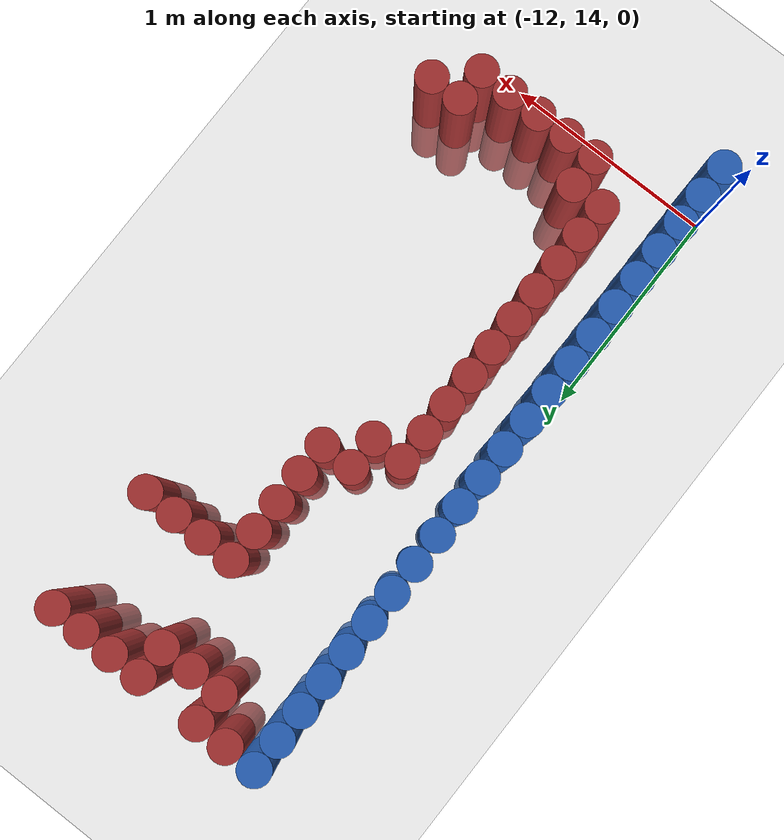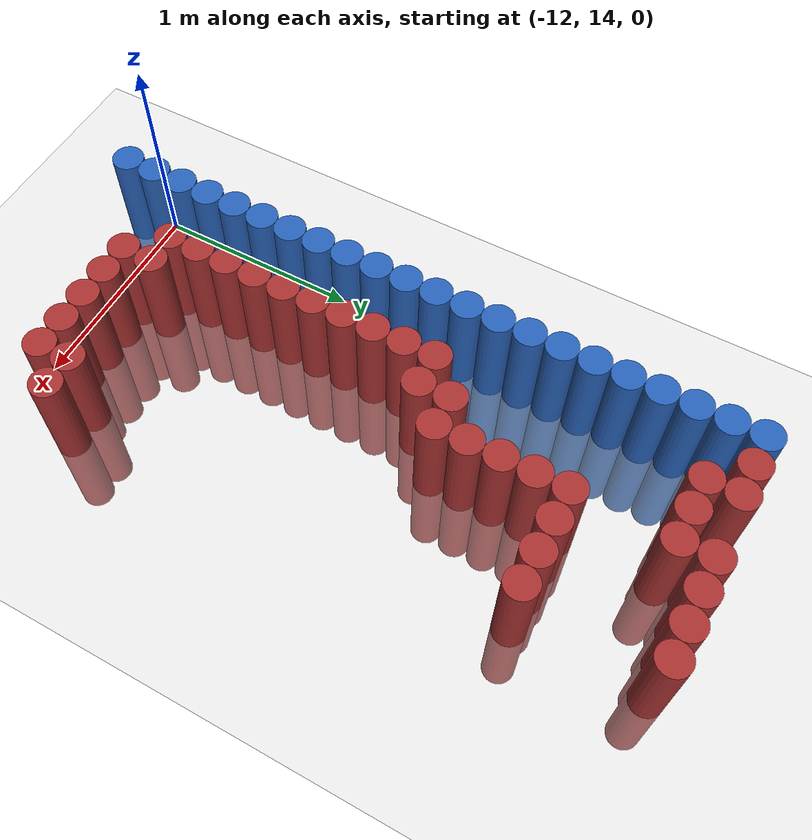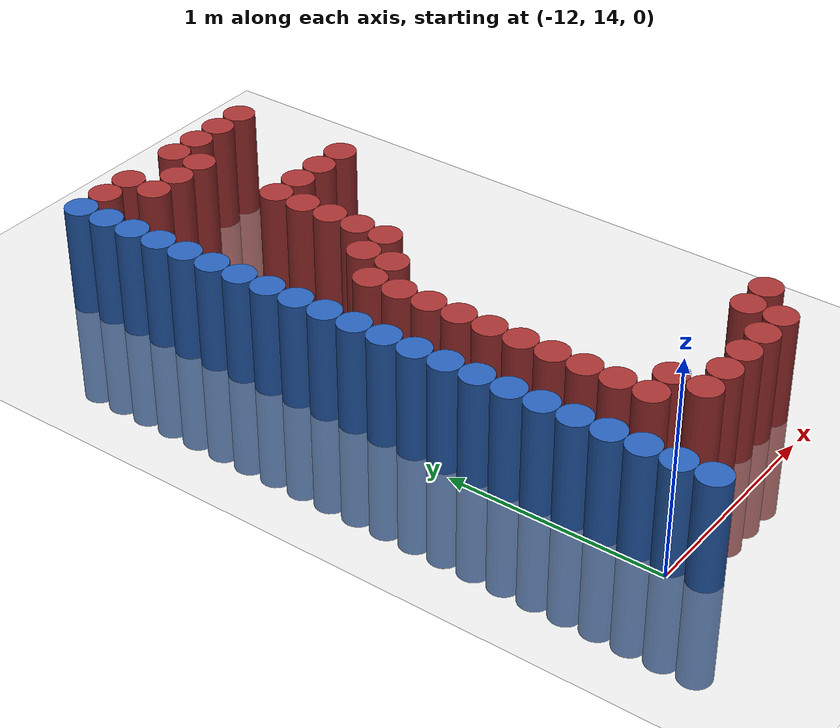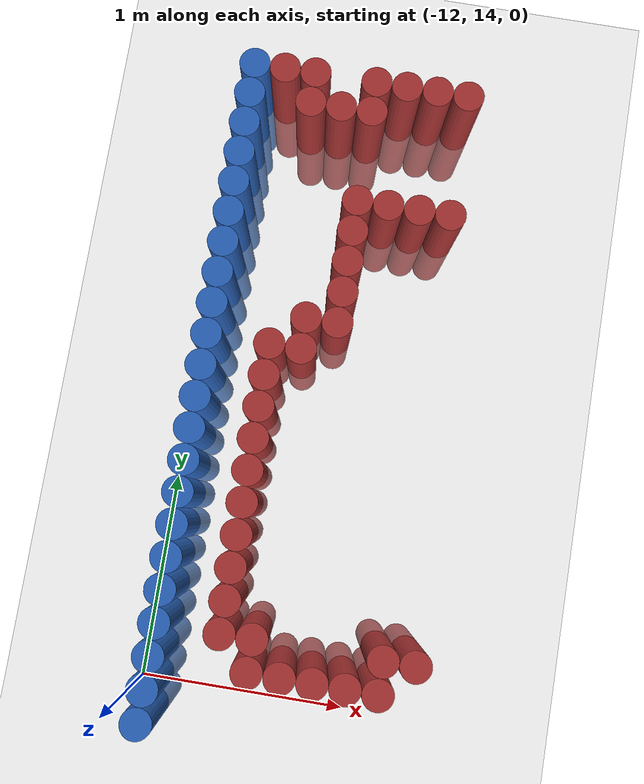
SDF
<sdf version="1.6">
 <world name="default">
  <model name="ground_plane">
   <static>1</static>
   <link name="link">
    <collision name="collision">
     <geometry><plane><normal>0 0 1</normal><size>100 100</size></plane></geometry>
     <surface><friction><ode><mu>100</mu><mu2>50</mu2></ode></friction></surface>
    </collision>
    <visual name="visual">
     <cast_shadows>0</cast_shadows>
     <geometry><plane><normal>0 0 1</normal><size>100 100</size></plane></geometry>
     <material>
      <script><uri>file://media/materials/scripts/gazebo.material</uri><name>Gazebo/Grey</name></script>
     </material>
    </visual>
   </link>
  </model>
  <model name="unit_cylinder_203">
   <static>1</static>
   <pose>-11.925 13.875 0 0 -0 0</pose>
   <link name="link">
    <inertial>
     <mass>1</mass>
     <inertia><ixx>0.145833</ixx><ixy>0</ixy><ixz>0</ixz><iyy>0.145833</iyy><iyz>0</iyz><izz>0.125</izz></inertia>
    </inertial>
    <collision name="collision">
     <geometry><cylinder><radius>0.075</radius><length>1</length></cylinder></geometry>
    </collision>
    <visual name="visual">
     <geometry><cylinder><radius>0.075</radius><length>1</length></cylinder></geometry>
     <material><ambient>0.152 0.379 0.72 1</ambient><diffuse>0.152 0.379 0.72 1</diffuse></material>
     <material>
      <script><name>Gazebo/Grey</name><uri>file://media/materials/scripts/gazebo.material</uri></script>
     </material>
    </visual>
   </link>
  </model>
  <model name="unit_cylinder_204">
   <static>1</static>
   <pose>-11.925 14.025 0 0 -0 0</pose>
   <link name="link">
    <inertial>
     <mass>1</mass>
     <inertia><ixx>0.145833</ixx><ixy>0</ixy><ixz>0</ixz><iyy>0.145833</iyy><iyz>0</iyz><izz>0.125</izz></inertia>
    </inertial>
    <collision name="collision">
     <geometry><cylinder><radius>0.075</radius><length>1</length></cylinder></geometry>
    </collision>
    <visual name="visual">
     <geometry><cylinder><radius>0.075</radius><length>1</length></cylinder></geometry>
     <material><ambient>0.152 0.379 0.72 1</ambient><diffuse>0.152 0.379 0.72 1</diffuse></material>
     <material>
      <script><name>Gazebo/Grey</name><uri>file://media/materials/scripts/gazebo.material</uri></script>
     </material>
    </visual>
   </link>
  </model>
  <model name="unit_cylinder_205">
   <static>1</static>
   <pose>-11.925 14.175 0 0 -0 0</pose>
   <link name="link">
    <inertial>
     <mass>1</mass>
     <inertia><ixx>0.145833</ixx><ixy>0</ixy><ixz>0</ixz><iyy>0.145833</iyy><iyz>0</iyz><izz>0.125</izz></inertia>
    </inertial>
    <collision name="collision">
     <geometry><cylinder><radius>0.075</radius><length>1</length></cylinder></geometry>
    </collision>
    <visual name="visual">
     <geometry><cylinder><radius>0.075</radius><length>1</length></cylinder></geometry>
     <material><ambient>0.152 0.379 0.72 1</ambient><diffuse>0.152 0.379 0.72 1</diffuse></material>
     <material>
      <script><name>Gazebo/Grey</name><uri>file://media/materials/scripts/gazebo.material</uri></script>
     </material>
    </visual>
   </link>
  </model>
  <model name="unit_cylinder_206">
   <static>1</static>
   <pose>-11.925 14.325 0 0 -0 0</pose>
   <link name="link">
    <inertial>
     <mass>1</mass>
     <inertia><ixx>0.145833</ixx><ixy>0</ixy><ixz>0</ixz><iyy>0.145833</iyy><iyz>0</iyz><izz>0.125</izz></inertia>
    </inertial>
    <collision name="collision">
     <geometry><cylinder><radius>0.075</radius><length>1</length></cylinder></geometry>
    </collision>
    <visual name="visual">
     <geometry><cylinder><radius>0.075</radius><length>1</length></cylinder></geometry>
     <material><ambient>0.152 0.379 0.72 1</ambient><diffuse>0.152 0.379 0.72 1</diffuse></material>
     <material>
      <script><name>Gazebo/Grey</name><uri>file://media/materials/scripts/gazebo.material</uri></script>
     </material>
    </visual>
   </link>
  </model>
  <model name="unit_cylinder_207">
   <static>1</static>
   <pose>-11.925 14.475 0 0 -0 0</pose>
   <link name="link">
    <inertial>
     <mass>1</mass>
     <inertia><ixx>0.145833</ixx><ixy>0</ixy><ixz>0</ixz><iyy>0.145833</iyy><iyz>0</iyz><izz>0.125</izz></inertia>
    </inertial>
    <collision name="collision">
     <geometry><cylinder><radius>0.075</radius><length>1</length></cylinder></geometry>
    </collision>
    <visual name="visual">
     <geometry><cylinder><radius>0.075</radius><length>1</length></cylinder></geometry>
     <material><ambient>0.152 0.379 0.72 1</ambient><diffuse>0.152 0.379 0.72 1</diffuse></material>
     <material>
      <script><name>Gazebo/Grey</name><uri>file://media/materials/scripts/gazebo.material</uri></script>
     </material>
    </visual>
   </link>
  </model>
  <model name="unit_cylinder_208">
   <static>1</static>
   <pose>-11.925 14.625 0 0 -0 0</pose>
   <link name="link">
    <inertial>
     <mass>1</mass>
     <inertia><ixx>0.145833</ixx><ixy>0</ixy><ixz>0</ixz><iyy>0.145833</iyy><iyz>0</iyz><izz>0.125</izz></inertia>
    </inertial>
    <collision name="collision">
     <geometry><cylinder><radius>0.075</radius><length>1</length></cylinder></geometry>
    </collision>
    <visual name="visual">
     <geometry><cylinder><radius>0.075</radius><length>1</length></cylinder></geometry>
     <material><ambient>0.152 0.379 0.72 1</ambient><diffuse>0.152 0.379 0.72 1</diffuse></material>
     <material>
      <script><name>Gazebo/Grey</name><uri>file://media/materials/scripts/gazebo.material</uri></script>
     </material>
    </visual>
   </link>
  </model>
  <model name="unit_cylinder_209">
   <static>1</static>
   <pose>-11.925 14.775 0 0 -0 0</pose>
   <link name="link">
    <inertial>
     <mass>1</mass>
     <inertia><ixx>0.145833</ixx><ixy>0</ixy><ixz>0</ixz><iyy>0.145833</iyy><iyz>0</iyz><izz>0.125</izz></inertia>
    </inertial>
    <collision name="collision">
     <geometry><cylinder><radius>0.075</radius><length>1</length></cylinder></geometry>
    </collision>
    <visual name="visual">
     <geometry><cylinder><radius>0.075</radius><length>1</length></cylinder></geometry>
     <material><ambient>0.152 0.379 0.72 1</ambient><diffuse>0.152 0.379 0.72 1</diffuse></material>
     <material>
      <script><name>Gazebo/Grey</name><uri>file://media/materials/scripts/gazebo.material</uri></script>
     </material>
    </visual>
   </link>
  </model>
  <model name="unit_cylinder_210">
   <static>1</static>
   <pose>-11.925 14.925 0 0 -0 0</pose>
   <link name="link">
    <inertial>
     <mass>1</mass>
     <inertia><ixx>0.145833</ixx><ixy>0</ixy><ixz>0</ixz><iyy>0.145833</iyy><iyz>0</iyz><izz>0.125</izz></inertia>
    </inertial>
    <collision name="collision">
     <geometry><cylinder><radius>0.075</radius><length>1</length></cylinder></geometry>
    </collision>
    <visual name="visual">
     <geometry><cylinder><radius>0.075</radius><length>1</length></cylinder></geometry>
     <material><ambient>0.152 0.379 0.72 1</ambient><diffuse>0.152 0.379 0.72 1</diffuse></material>
     <material>
      <script><name>Gazebo/Grey</name><uri>file://media/materials/scripts/gazebo.material</uri></script>
     </material>
    </visual>
   </link>
  </model>
  <model name="unit_cylinder_211">
   <static>1</static>
   <pose>-11.925 15.075 0 0 -0 0</pose>
   <link name="link">
    <inertial>
     <mass>1</mass>
     <inertia><ixx>0.145833</ixx><ixy>0</ixy><ixz>0</ixz><iyy>0.145833</iyy><iyz>0</iyz><izz>0.125</izz></inertia>
    </inertial>
    <collision name="collision">
     <geometry><cylinder><radius>0.075</radius><length>1</length></cylinder></geometry>
    </collision>
    <visual name="visual">
     <geometry><cylinder><radius>0.075</radius><length>1</length></cylinder></geometry>
     <material><ambient>0.152 0.379 0.72 1</ambient><diffuse>0.152 0.379 0.72 1</diffuse></material>
     <material>
      <script><name>Gazebo/Grey</name><uri>file://media/materials/scripts/gazebo.material</uri></script>
     </material>
    </visual>
   </link>
  </model>
  <model name="unit_cylinder_212">
   <static>1</static>
   <pose>-11.925 15.225 0 0 -0 0</pose>
   <link name="link">
    <inertial>
     <mass>1</mass>
     <inertia><ixx>0.145833</ixx><ixy>0</ixy><ixz>0</ixz><iyy>0.145833</iyy><iyz>0</iyz><izz>0.125</izz></inertia>
    </inertial>
    <collision name="collision">
     <geometry><cylinder><radius>0.075</radius><length>1</length></cylinder></geometry>
    </collision>
    <visual name="visual">
     <geometry><cylinder><radius>0.075</radius><length>1</length></cylinder></geometry>
     <material><ambient>0.152 0.379 0.72 1</ambient><diffuse>0.152 0.379 0.72 1</diffuse></material>
     <material>
      <script><name>Gazebo/Grey</name><uri>file://media/materials/scripts/gazebo.material</uri></script>
     </material>
    </visual>
   </link>
  </model>
  <model name="unit_cylinder_213">
   <static>1</static>
   <pose>-11.925 15.375 0 0 -0 0</pose>
   <link name="link">
    <inertial>
     <mass>1</mass>
     <inertia><ixx>0.145833</ixx><ixy>0</ixy><ixz>0</ixz><iyy>0.145833</iyy><iyz>0</iyz><izz>0.125</izz></inertia>
    </inertial>
    <collision name="collision">
     <geometry><cylinder><radius>0.075</radius><length>1</length></cylinder></geometry>
    </collision>
    <visual name="visual">
     <geometry><cylinder><radius>0.075</radius><length>1</length></cylinder></geometry>
     <material><ambient>0.152 0.379 0.72 1</ambient><diffuse>0.152 0.379 0.72 1</diffuse></material>
     <material>
      <script><name>Gazebo/Grey</name><uri>file://media/materials/scripts/gazebo.material</uri></script>
     </material>
    </visual>
   </link>
  </model>
  <model name="unit_cylinder_214">
   <static>1</static>
   <pose>-11.925 15.525 0 0 -0 0</pose>
   <link name="link">
    <inertial>
     <mass>1</mass>
     <inertia><ixx>0.145833</ixx><ixy>0</ixy><ixz>0</ixz><iyy>0.145833</iyy><iyz>0</iyz><izz>0.125</izz></inertia>
    </inertial>
    <collision name="collision">
     <geometry><cylinder><radius>0.075</radius><length>1</length></cylinder></geometry>
    </collision>
    <visual name="visual">
     <geometry><cylinder><radius>0.075</radius><length>1</length></cylinder></geometry>
     <material><ambient>0.152 0.379 0.72 1</ambient><diffuse>0.152 0.379 0.72 1</diffuse></material>
     <material>
      <script><name>Gazebo/Grey</name><uri>file://media/materials/scripts/gazebo.material</uri></script>
     </material>
    </visual>
   </link>
  </model>
  <model name="unit_cylinder_215">
   <static>1</static>
   <pose>-11.925 15.675 0 0 -0 0</pose>
   <link name="link">
    <inertial>
     <mass>1</mass>
     <inertia><ixx>0.145833</ixx><ixy>0</ixy><ixz>0</ixz><iyy>0.145833</iyy><iyz>0</iyz><izz>0.125</izz></inertia>
    </inertial>
    <collision name="collision">
     <geometry><cylinder><radius>0.075</radius><length>1</length></cylinder></geometry>
    </collision>
    <visual name="visual">
     <geometry><cylinder><radius>0.075</radius><length>1</length></cylinder></geometry>
     <material><ambient>0.152 0.379 0.72 1</ambient><diffuse>0.152 0.379 0.72 1</diffuse></material>
     <material>
      <script><name>Gazebo/Grey</name><uri>file://media/materials/scripts/gazebo.material</uri></script>
     </material>
    </visual>
   </link>
  </model>
  <model name="unit_cylinder_216">
   <static>1</static>
   <pose>-11.925 15.825 0 0 -0 0</pose>
   <link name="link">
    <inertial>
     <mass>1</mass>
     <inertia><ixx>0.145833</ixx><ixy>0</ixy><ixz>0</ixz><iyy>0.145833</iyy><iyz>0</iyz><izz>0.125</izz></inertia>
    </inertial>
    <collision name="collision">
     <geometry><cylinder><radius>0.075</radius><length>1</length></cylinder></geometry>
    </collision>
    <visual name="visual">
     <geometry><cylinder><radius>0.075</radius><length>1</length></cylinder></geometry>
     <material><ambient>0.152 0.379 0.72 1</ambient><diffuse>0.152 0.379 0.72 1</diffuse></material>
     <material>
      <script><name>Gazebo/Grey</name><uri>file://media/materials/scripts/gazebo.material</uri></script>
     </material>
    </visual>
   </link>
  </model>
  <model name="unit_cylinder_217">
   <static>1</static>
   <pose>-11.925 15.975 0 0 -0 0</pose>
   <link name="link">
    <inertial>
     <mass>1</mass>
     <inertia><ixx>0.145833</ixx><ixy>0</ixy><ixz>0</ixz><iyy>0.145833</iyy><iyz>0</iyz><izz>0.125</izz></inertia>
    </inertial>
    <collision name="collision">
     <geometry><cylinder><radius>0.075</radius><length>1</length></cylinder></geometry>
    </collision>
    <visual name="visual">
     <geometry><cylinder><radius>0.075</radius><length>1</length></cylinder></geometry>
     <material><ambient>0.152 0.379 0.72 1</ambient><diffuse>0.152 0.379 0.72 1</diffuse></material>
     <material>
      <script><name>Gazebo/Grey</name><uri>file://media/materials/scripts/gazebo.material</uri></script>
     </material>
    </visual>
   </link>
  </model>
  <model name="unit_cylinder_218">
   <static>1</static>
   <pose>-11.925 16.125 0 0 -0 0</pose>
   <link name="link">
    <inertial>
     <mass>1</mass>
     <inertia><ixx>0.145833</ixx><ixy>0</ixy><ixz>0</ixz><iyy>0.145833</iyy><iyz>0</iyz><izz>0.125</izz></inertia>
    </inertial>
    <collision name="collision">
     <geometry><cylinder><radius>0.075</radius><length>1</length></cylinder></geometry>
    </collision>
    <visual name="visual">
     <geometry><cylinder><radius>0.075</radius><length>1</length></cylinder></geometry>
     <material><ambient>0.152 0.379 0.72 1</ambient><diffuse>0.152 0.379 0.72 1</diffuse></material>
     <material>
      <script><name>Gazebo/Grey</name><uri>file://media/materials/scripts/gazebo.material</uri></script>
     </material>
    </visual>
   </link>
  </model>
  <model name="unit_cylinder_219">
   <static>1</static>
   <pose>-11.925 16.275 0 0 -0 0</pose>
   <link name="link">
    <inertial>
     <mass>1</mass>
     <inertia><ixx>0.145833</ixx><ixy>0</ixy><ixz>0</ixz><iyy>0.145833</iyy><iyz>0</iyz><izz>0.125</izz></inertia>
    </inertial>
    <collision name="collision">
     <geometry><cylinder><radius>0.075</radius><length>1</length></cylinder></geometry>
    </collision>
    <visual name="visual">
     <geometry><cylinder><radius>0.075</radius><length>1</length></cylinder></geometry>
     <material><ambient>0.152 0.379 0.72 1</ambient><diffuse>0.152 0.379 0.72 1</diffuse></material>
     <material>
      <script><name>Gazebo/Grey</name><uri>file://media/materials/scripts/gazebo.material</uri></script>
     </material>
    </visual>
   </link>
  </model>
  <model name="unit_cylinder_220">
   <static>1</static>
   <pose>-11.925 16.425 0 0 -0 0</pose>
   <link name="link">
    <inertial>
     <mass>1</mass>
     <inertia><ixx>0.145833</ixx><ixy>0</ixy><ixz>0</ixz><iyy>0.145833</iyy><iyz>0</iyz><izz>0.125</izz></inertia>
    </inertial>
    <collision name="collision">
     <geometry><cylinder><radius>0.075</radius><length>1</length></cylinder></geometry>
    </collision>
    <visual name="visual">
     <geometry><cylinder><radius>0.075</radius><length>1</length></cylinder></geometry>
     <material><ambient>0.152 0.379 0.72 1</ambient><diffuse>0.152 0.379 0.72 1</diffuse></material>
     <material>
      <script><name>Gazebo/Grey</name><uri>file://media/materials/scripts/gazebo.material</uri></script>
     </material>
    </visual>
   </link>
  </model>
  <model name="unit_cylinder_221">
   <static>1</static>
   <pose>-11.925 16.575 0 0 -0 0</pose>
   <link name="link">
    <inertial>
     <mass>1</mass>
     <inertia><ixx>0.145833</ixx><ixy>0</ixy><ixz>0</ixz><iyy>0.145833</iyy><iyz>0</iyz><izz>0.125</izz></inertia>
    </inertial>
    <collision name="collision">
     <geometry><cylinder><radius>0.075</radius><length>1</length></cylinder></geometry>
    </collision>
    <visual name="visual">
     <geometry><cylinder><radius>0.075</radius><length>1</length></cylinder></geometry>
     <material><ambient>0.152 0.379 0.72 1</ambient><diffuse>0.152 0.379 0.72 1</diffuse></material>
     <material>
      <script><name>Gazebo/Grey</name><uri>file://media/materials/scripts/gazebo.material</uri></script>
     </material>
    </visual>
   </link>
  </model>
  <model name="unit_cylinder_222">
   <static>1</static>
   <pose>-11.925 16.725 0 0 -0 0</pose>
   <link name="link">
    <inertial>
     <mass>1</mass>
     <inertia><ixx>0.145833</ixx><ixy>0</ixy><ixz>0</ixz><iyy>0.145833</iyy><iyz>0</iyz><izz>0.125</izz></inertia>
    </inertial>
    <collision name="collision">
     <geometry><cylinder><radius>0.075</radius><length>1</length></cylinder></geometry>
    </collision>
    <visual name="visual">
     <geometry><cylinder><radius>0.075</radius><length>1</length></cylinder></geometry>
     <material><ambient>0.152 0.379 0.72 1</ambient><diffuse>0.152 0.379 0.72 1</diffuse></material>
     <material>
      <script><name>Gazebo/Grey</name><uri>file://media/materials/scripts/gazebo.material</uri></script>
     </material>
    </visual>
   </link>
  </model>
  <model name="unit_cylinder_223">
   <static>1</static>
   <pose>-11.925 16.875 0 0 -0 0</pose>
   <link name="link">
    <inertial>
     <mass>1</mass>
     <inertia><ixx>0.145833</ixx><ixy>0</ixy><ixz>0</ixz><iyy>0.145833</iyy><iyz>0</iyz><izz>0.125</izz></inertia>
    </inertial>
    <collision name="collision">
     <geometry><cylinder><radius>0.075</radius><length>1</length></cylinder></geometry>
    </collision>
    <visual name="visual">
     <geometry><cylinder><radius>0.075</radius><length>1</length></cylinder></geometry>
     <material><ambient>0.152 0.379 0.72 1</ambient><diffuse>0.152 0.379 0.72 1</diffuse></material>
     <material>
      <script><name>Gazebo/Grey</name><uri>file://media/materials/scripts/gazebo.material</uri></script>
     </material>
    </visual>
   </link>
  </model>
  <model name="unit_cylinder_224">
   <static>1</static>
   <pose>-11.925 17.025 0 0 -0 0</pose>
   <link name="link">
    <inertial>
     <mass>1</mass>
     <inertia><ixx>0.145833</ixx><ixy>0</ixy><ixz>0</ixz><iyy>0.145833</iyy><iyz>0</iyz><izz>0.125</izz></inertia>
    </inertial>
    <collision name="collision">
     <geometry><cylinder><radius>0.075</radius><length>1</length></cylinder></geometry>
    </collision>
    <visual name="visual">
     <geometry><cylinder><radius>0.075</radius><length>1</length></cylinder></geometry>
     <material><ambient>0.152 0.379 0.72 1</ambient><diffuse>0.152 0.379 0.72 1</diffuse></material>
     <material>
      <script><name>Gazebo/Grey</name><uri>file://media/materials/scripts/gazebo.material</uri></script>
     </material>
    </visual>
   </link>
  </model>
  <model name="unit_cylinder_226">
   <static>1</static>
   <pose>-11.775 17.025 0 0 -0 0</pose>
   <link name="link">
    <inertial>
     <mass>1</mass>
     <inertia><ixx>0.145833</ixx><ixy>0</ixy><ixz>0</ixz><iyy>0.145833</iyy><iyz>0</iyz><izz>0.125</izz></inertia>
    </inertial>
    <collision name="collision">
     <geometry><cylinder><radius>0.075</radius><length>1</length></cylinder></geometry>
    </collision>
    <visual name="visual">
     <geometry><cylinder><radius>0.075</radius><length>1</length></cylinder></geometry>
     <material><ambient>0.648 0.192 0.192 1</ambient><diffuse>0.648 0.192 0.192 1</diffuse></material>
     <material>
      <script><name>Gazebo/Grey</name><uri>file://media/materials/scripts/gazebo.material</uri></script>
     </material>
    </visual>
   </link>
  </model>
  <model name="unit_cylinder_228">
   <static>1</static>
   <pose>-11.625 14.325 0 0 -0 0</pose>
   <link name="link">
    <inertial>
     <mass>1</mass>
     <inertia><ixx>0.145833</ixx><ixy>0</ixy><ixz>0</ixz><iyy>0.145833</iyy><iyz>0</iyz><izz>0.125</izz></inertia>
    </inertial>
    <collision name="collision">
     <geometry><cylinder><radius>0.075</radius><length>1</length></cylinder></geometry>
    </collision>
    <visual name="visual">
     <geometry><cylinder><radius>0.075</radius><length>1</length></cylinder></geometry>
     <material><ambient>0.648 0.192 0.192 1</ambient><diffuse>0.648 0.192 0.192 1</diffuse></material>
     <material>
      <script><name>Gazebo/Grey</name><uri>file://media/materials/scripts/gazebo.material</uri></script>
     </material>
    </visual>
   </link>
  </model>
  <model name="unit_cylinder_229">
   <static>1</static>
   <pose>-11.625 14.475 0 0 -0 0</pose>
   <link name="link">
    <inertial>
     <mass>1</mass>
     <inertia><ixx>0.145833</ixx><ixy>0</ixy><ixz>0</ixz><iyy>0.145833</iyy><iyz>0</iyz><izz>0.125</izz></inertia>
    </inertial>
    <collision name="collision">
     <geometry><cylinder><radius>0.075</radius><length>1</length></cylinder></geometry>
    </collision>
    <visual name="visual">
     <geometry><cylinder><radius>0.075</radius><length>1</length></cylinder></geometry>
     <material><ambient>0.648 0.192 0.192 1</ambient><diffuse>0.648 0.192 0.192 1</diffuse></material>
     <material>
      <script><name>Gazebo/Grey</name><uri>file://media/materials/scripts/gazebo.material</uri></script>
     </material>
    </visual>
   </link>
  </model>
  <model name="unit_cylinder_230">
   <static>1</static>
   <pose>-11.625 14.625 0 0 -0 0</pose>
   <link name="link">
    <inertial>
     <mass>1</mass>
     <inertia><ixx>0.145833</ixx><ixy>0</ixy><ixz>0</ixz><iyy>0.145833</iyy><iyz>0</iyz><izz>0.125</izz></inertia>
    </inertial>
    <collision name="collision">
     <geometry><cylinder><radius>0.075</radius><length>1</length></cylinder></geometry>
    </collision>
    <visual name="visual">
     <geometry><cylinder><radius>0.075</radius><length>1</length></cylinder></geometry>
     <material><ambient>0.648 0.192 0.192 1</ambient><diffuse>0.648 0.192 0.192 1</diffuse></material>
     <material>
      <script><name>Gazebo/Grey</name><uri>file://media/materials/scripts/gazebo.material</uri></script>
     </material>
    </visual>
   </link>
  </model>
  <model name="unit_cylinder_231">
   <static>1</static>
   <pose>-11.625 14.775 0 0 -0 0</pose>
   <link name="link">
    <inertial>
     <mass>1</mass>
     <inertia><ixx>0.145833</ixx><ixy>0</ixy><ixz>0</ixz><iyy>0.145833</iyy><iyz>0</iyz><izz>0.125</izz></inertia>
    </inertial>
    <collision name="collision">
     <geometry><cylinder><radius>0.075</radius><length>1</length></cylinder></geometry>
    </collision>
    <visual name="visual">
     <geometry><cylinder><radius>0.075</radius><length>1</length></cylinder></geometry>
     <material><ambient>0.648 0.192 0.192 1</ambient><diffuse>0.648 0.192 0.192 1</diffuse></material>
     <material>
      <script><name>Gazebo/Grey</name><uri>file://media/materials/scripts/gazebo.material</uri></script>
     </material>
    </visual>
   </link>
  </model>
  <model name="unit_cylinder_232">
   <static>1</static>
   <pose>-11.625 14.925 0 0 -0 0</pose>
   <link name="link">
    <inertial>
     <mass>1</mass>
     <inertia><ixx>0.145833</ixx><ixy>0</ixy><ixz>0</ixz><iyy>0.145833</iyy><iyz>0</iyz><izz>0.125</izz></inertia>
    </inertial>
    <collision name="collision">
     <geometry><cylinder><radius>0.075</radius><length>1</length></cylinder></geometry>
    </collision>
    <visual name="visual">
     <geometry><cylinder><radius>0.075</radius><length>1</length></cylinder></geometry>
     <material><ambient>0.648 0.192 0.192 1</ambient><diffuse>0.648 0.192 0.192 1</diffuse></material>
     <material>
      <script><name>Gazebo/Grey</name><uri>file://media/materials/scripts/gazebo.material</uri></script>
     </material>
    </visual>
   </link>
  </model>
  <model name="unit_cylinder_233">
   <static>1</static>
   <pose>-11.625 15.075 0 0 -0 0</pose>
   <link name="link">
    <inertial>
     <mass>1</mass>
     <inertia><ixx>0.145833</ixx><ixy>0</ixy><ixz>0</ixz><iyy>0.145833</iyy><iyz>0</iyz><izz>0.125</izz></inertia>
    </inertial>
    <collision name="collision">
     <geometry><cylinder><radius>0.075</radius><length>1</length></cylinder></geometry>
    </collision>
    <visual name="visual">
     <geometry><cylinder><radius>0.075</radius><length>1</length></cylinder></geometry>
     <material><ambient>0.648 0.192 0.192 1</ambient><diffuse>0.648 0.192 0.192 1</diffuse></material>
     <material>
      <script><name>Gazebo/Grey</name><uri>file://media/materials/scripts/gazebo.material</uri></script>
     </material>
    </visual>
   </link>
  </model>
  <model name="unit_cylinder_234">
   <static>1</static>
   <pose>-11.625 15.225 0 0 -0 0</pose>
   <link name="link">
    <inertial>
     <mass>1</mass>
     <inertia><ixx>0.145833</ixx><ixy>0</ixy><ixz>0</ixz><iyy>0.145833</iyy><iyz>0</iyz><izz>0.125</izz></inertia>
    </inertial>
    <collision name="collision">
     <geometry><cylinder><radius>0.075</radius><length>1</length></cylinder></geometry>
    </collision>
    <visual name="visual">
     <geometry><cylinder><radius>0.075</radius><length>1</length></cylinder></geometry>
     <material><ambient>0.648 0.192 0.192 1</ambient><diffuse>0.648 0.192 0.192 1</diffuse></material>
     <material>
      <script><name>Gazebo/Grey</name><uri>file://media/materials/scripts/gazebo.material</uri></script>
     </material>
    </visual>
   </link>
  </model>
  <model name="unit_cylinder_235">
   <static>1</static>
   <pose>-11.625 15.375 0 0 -0 0</pose>
   <link name="link">
    <inertial>
     <mass>1</mass>
     <inertia><ixx>0.145833</ixx><ixy>0</ixy><ixz>0</ixz><iyy>0.145833</iyy><iyz>0</iyz><izz>0.125</izz></inertia>
    </inertial>
    <collision name="collision">
     <geometry><cylinder><radius>0.075</radius><length>1</length></cylinder></geometry>
    </collision>
    <visual name="visual">
     <geometry><cylinder><radius>0.075</radius><length>1</length></cylinder></geometry>
     <material><ambient>0.648 0.192 0.192 1</ambient><diffuse>0.648 0.192 0.192 1</diffuse></material>
     <material>
      <script><name>Gazebo/Grey</name><uri>file://media/materials/scripts/gazebo.material</uri></script>
     </material>
    </visual>
   </link>
  </model>
  <model name="unit_cylinder_236">
   <static>1</static>
   <pose>-11.625 15.525 0 0 -0 0</pose>
   <link name="link">
    <inertial>
     <mass>1</mass>
     <inertia><ixx>0.145833</ixx><ixy>0</ixy><ixz>0</ixz><iyy>0.145833</iyy><iyz>0</iyz><izz>0.125</izz></inertia>
    </inertial>
    <collision name="collision">
     <geometry><cylinder><radius>0.075</radius><length>1</length></cylinder></geometry>
    </collision>
    <visual name="visual">
     <geometry><cylinder><radius>0.075</radius><length>1</length></cylinder></geometry>
     <material><ambient>0.648 0.192 0.192 1</ambient><diffuse>0.648 0.192 0.192 1</diffuse></material>
     <material>
      <script><name>Gazebo/Grey</name><uri>file://media/materials/scripts/gazebo.material</uri></script>
     </material>
    </visual>
   </link>
  </model>
  <model name="unit_cylinder_237">
   <static>1</static>
   <pose>-11.625 15.675 0 0 -0 0</pose>
   <link name="link">
    <inertial>
     <mass>1</mass>
     <inertia><ixx>0.145833</ixx><ixy>0</ixy><ixz>0</ixz><iyy>0.145833</iyy><iyz>0</iyz><izz>0.125</izz></inertia>
    </inertial>
    <collision name="collision">
     <geometry><cylinder><radius>0.075</radius><length>1</length></cylinder></geometry>
    </collision>
    <visual name="visual">
     <geometry><cylinder><radius>0.075</radius><length>1</length></cylinder></geometry>
     <material><ambient>0.648 0.192 0.192 1</ambient><diffuse>0.648 0.192 0.192 1</diffuse></material>
     <material>
      <script><name>Gazebo/Grey</name><uri>file://media/materials/scripts/gazebo.material</uri></script>
     </material>
    </visual>
   </link>
  </model>
  <model name="unit_cylinder_238">
   <static>1</static>
   <pose>-11.625 16.875 0 0 -0 0</pose>
   <link name="link">
    <inertial>
     <mass>1</mass>
     <inertia><ixx>0.145833</ixx><ixy>0</ixy><ixz>0</ixz><iyy>0.145833</iyy><iyz>0</iyz><izz>0.125</izz></inertia>
    </inertial>
    <collision name="collision">
     <geometry><cylinder><radius>0.075</radius><length>1</length></cylinder></geometry>
    </collision>
    <visual name="visual">
     <geometry><cylinder><radius>0.075</radius><length>1</length></cylinder></geometry>
     <material><ambient>0.648 0.192 0.192 1</ambient><diffuse>0.648 0.192 0.192 1</diffuse></material>
     <material>
      <script><name>Gazebo/Grey</name><uri>file://media/materials/scripts/gazebo.material</uri></script>
     </material>
    </visual>
   </link>
  </model>
  <model name="unit_cylinder_239">
   <static>1</static>
   <pose>-11.625 17.025 0 0 -0 0</pose>
   <link name="link">
    <inertial>
     <mass>1</mass>
     <inertia><ixx>0.145833</ixx><ixy>0</ixy><ixz>0</ixz><iyy>0.145833</iyy><iyz>0</iyz><izz>0.125</izz></inertia>
    </inertial>
    <collision name="collision">
     <geometry><cylinder><radius>0.075</radius><length>1</length></cylinder></geometry>
    </collision>
    <visual name="visual">
     <geometry><cylinder><radius>0.075</radius><length>1</length></cylinder></geometry>
     <material><ambient>0.648 0.192 0.192 1</ambient><diffuse>0.648 0.192 0.192 1</diffuse></material>
     <material>
      <script><name>Gazebo/Grey</name><uri>file://media/materials/scripts/gazebo.material</uri></script>
     </material>
    </visual>
   </link>
  </model>
  <model name="unit_cylinder_269">
   <static>1</static>
   <pose>-11.475 14.175 0 0 -0 0</pose>
   <link name="link">
    <inertial>
     <mass>1</mass>
     <inertia><ixx>0.145833</ixx><ixy>0</ixy><ixz>0</ixz><iyy>0.145833</iyy><iyz>0</iyz><izz>0.125</izz></inertia>
    </inertial>
    <collision name="collision">
     <geometry><cylinder><radius>0.075</radius><length>1</length></cylinder></geometry>
    </collision>
    <visual name="visual">
     <geometry><cylinder><radius>0.075</radius><length>1</length></cylinder></geometry>
     <material><ambient>0.648 0.192 0.192 1</ambient><diffuse>0.648 0.192 0.192 1</diffuse></material>
     <material>
      <script><name>Gazebo/Grey</name><uri>file://media/materials/scripts/gazebo.material</uri></script>
     </material>
    </visual>
   </link>
  </model>
  <model name="unit_cylinder_270">
   <static>1</static>
   <pose>-11.475 14.325 0 0 -0 0</pose>
   <link name="link">
    <inertial>
     <mass>1</mass>
     <inertia><ixx>0.145833</ixx><ixy>0</ixy><ixz>0</ixz><iyy>0.145833</iyy><iyz>0</iyz><izz>0.125</izz></inertia>
    </inertial>
    <collision name="collision">
     <geometry><cylinder><radius>0.075</radius><length>1</length></cylinder></geometry>
    </collision>
    <visual name="visual">
     <geometry><cylinder><radius>0.075</radius><length>1</length></cylinder></geometry>
     <material><ambient>0.648 0.192 0.192 1</ambient><diffuse>0.648 0.192 0.192 1</diffuse></material>
     <material>
      <script><name>Gazebo/Grey</name><uri>file://media/materials/scripts/gazebo.material</uri></script>
     </material>
    </visual>
   </link>
  </model>
  <model name="unit_cylinder_271">
   <static>1</static>
   <pose>-11.475 15.675 0 0 -0 0</pose>
   <link name="link">
    <inertial>
     <mass>1</mass>
     <inertia><ixx>0.145833</ixx><ixy>0</ixy><ixz>0</ixz><iyy>0.145833</iyy><iyz>0</iyz><izz>0.125</izz></inertia>
    </inertial>
    <collision name="collision">
     <geometry><cylinder><radius>0.075</radius><length>1</length></cylinder></geometry>
    </collision>
    <visual name="visual">
     <geometry><cylinder><radius>0.075</radius><length>1</length></cylinder></geometry>
     <material><ambient>0.648 0.192 0.192 1</ambient><diffuse>0.648 0.192 0.192 1</diffuse></material>
     <material>
      <script><name>Gazebo/Grey</name><uri>file://media/materials/scripts/gazebo.material</uri></script>
     </material>
    </visual>
   </link>
  </model>
  <model name="unit_cylinder_272">
   <static>1</static>
   <pose>-11.475 15.825 0 0 -0 0</pose>
   <link name="link">
    <inertial>
     <mass>1</mass>
     <inertia><ixx>0.145833</ixx><ixy>0</ixy><ixz>0</ixz><iyy>0.145833</iyy><iyz>0</iyz><izz>0.125</izz></inertia>
    </inertial>
    <collision name="collision">
     <geometry><cylinder><radius>0.075</radius><length>1</length></cylinder></geometry>
    </collision>
    <visual name="visual">
     <geometry><cylinder><radius>0.075</radius><length>1</length></cylinder></geometry>
     <material><ambient>0.648 0.192 0.192 1</ambient><diffuse>0.648 0.192 0.192 1</diffuse></material>
     <material>
      <script><name>Gazebo/Grey</name><uri>file://media/materials/scripts/gazebo.material</uri></script>
     </material>
    </visual>
   </link>
  </model>
  <model name="unit_cylinder_273">
   <static>1</static>
   <pose>-11.475 16.875 0 0 -0 0</pose>
   <link name="link">
    <inertial>
     <mass>1</mass>
     <inertia><ixx>0.145833</ixx><ixy>0</ixy><ixz>0</ixz><iyy>0.145833</iyy><iyz>0</iyz><izz>0.125</izz></inertia>
    </inertial>
    <collision name="collision">
     <geometry><cylinder><radius>0.075</radius><length>1</length></cylinder></geometry>
    </collision>
    <visual name="visual">
     <geometry><cylinder><radius>0.075</radius><length>1</length></cylinder></geometry>
     <material><ambient>0.648 0.192 0.192 1</ambient><diffuse>0.648 0.192 0.192 1</diffuse></material>
     <material>
      <script><name>Gazebo/Grey</name><uri>file://media/materials/scripts/gazebo.material</uri></script>
     </material>
    </visual>
   </link>
  </model>
  <model name="unit_cylinder_285">
   <static>1</static>
   <pose>-11.325 14.175 0 0 -0 0</pose>
   <link name="link">
    <inertial>
     <mass>1</mass>
     <inertia><ixx>0.145833</ixx><ixy>0</ixy><ixz>0</ixz><iyy>0.145833</iyy><iyz>0</iyz><izz>0.125</izz></inertia>
    </inertial>
    <collision name="collision">
     <geometry><cylinder><radius>0.075</radius><length>1</length></cylinder></geometry>
    </collision>
    <visual name="visual">
     <geometry><cylinder><radius>0.075</radius><length>1</length></cylinder></geometry>
     <material><ambient>0.648 0.192 0.192 1</ambient><diffuse>0.648 0.192 0.192 1</diffuse></material>
     <material>
      <script><name>Gazebo/Grey</name><uri>file://media/materials/scripts/gazebo.material</uri></script>
     </material>
    </visual>
   </link>
  </model>
  <model name="unit_cylinder_286">
   <static>1</static>
   <pose>-11.325 15.825 0 0 -0 0</pose>
   <link name="link">
    <inertial>
     <mass>1</mass>
     <inertia><ixx>0.145833</ixx><ixy>0</ixy><ixz>0</ixz><iyy>0.145833</iyy><iyz>0</iyz><izz>0.125</izz></inertia>
    </inertial>
    <collision name="collision">
     <geometry><cylinder><radius>0.075</radius><length>1</length></cylinder></geometry>
    </collision>
    <visual name="visual">
     <geometry><cylinder><radius>0.075</radius><length>1</length></cylinder></geometry>
     <material><ambient>0.648 0.192 0.192 1</ambient><diffuse>0.648 0.192 0.192 1</diffuse></material>
     <material>
      <script><name>Gazebo/Grey</name><uri>file://media/materials/scripts/gazebo.material</uri></script>
     </material>
    </visual>
   </link>
  </model>
  <model name="unit_cylinder_287">
   <static>1</static>
   <pose>-11.325 15.975 0 0 -0 0</pose>
   <link name="link">
    <inertial>
     <mass>1</mass>
     <inertia><ixx>0.145833</ixx><ixy>0</ixy><ixz>0</ixz><iyy>0.145833</iyy><iyz>0</iyz><izz>0.125</izz></inertia>
    </inertial>
    <collision name="collision">
     <geometry><cylinder><radius>0.075</radius><length>1</length></cylinder></geometry>
    </collision>
    <visual name="visual">
     <geometry><cylinder><radius>0.075</radius><length>1</length></cylinder></geometry>
     <material><ambient>0.648 0.192 0.192 1</ambient><diffuse>0.648 0.192 0.192 1</diffuse></material>
     <material>
      <script><name>Gazebo/Grey</name><uri>file://media/materials/scripts/gazebo.material</uri></script>
     </material>
    </visual>
   </link>
  </model>
  <model name="unit_cylinder_288">
   <static>1</static>
   <pose>-11.325 16.125 0 0 -0 0</pose>
   <link name="link">
    <inertial>
     <mass>1</mass>
     <inertia><ixx>0.145833</ixx><ixy>0</ixy><ixz>0</ixz><iyy>0.145833</iyy><iyz>0</iyz><izz>0.125</izz></inertia>
    </inertial>
    <collision name="collision">
     <geometry><cylinder><radius>0.075</radius><length>1</length></cylinder></geometry>
    </collision>
    <visual name="visual">
     <geometry><cylinder><radius>0.075</radius><length>1</length></cylinder></geometry>
     <material><ambient>0.648 0.192 0.192 1</ambient><diffuse>0.648 0.192 0.192 1</diffuse></material>
     <material>
      <script><name>Gazebo/Grey</name><uri>file://media/materials/scripts/gazebo.material</uri></script>
     </material>
    </visual>
   </link>
  </model>
  <model name="unit_cylinder_289">
   <static>1</static>
   <pose>-11.325 16.275 0 0 -0 0</pose>
   <link name="link">
    <inertial>
     <mass>1</mass>
     <inertia><ixx>0.145833</ixx><ixy>0</ixy><ixz>0</ixz><iyy>0.145833</iyy><iyz>0</iyz><izz>0.125</izz></inertia>
    </inertial>
    <collision name="collision">
     <geometry><cylinder><radius>0.075</radius><length>1</length></cylinder></geometry>
    </collision>
    <visual name="visual">
     <geometry><cylinder><radius>0.075</radius><length>1</length></cylinder></geometry>
     <material><ambient>0.648 0.192 0.192 1</ambient><diffuse>0.648 0.192 0.192 1</diffuse></material>
     <material>
      <script><name>Gazebo/Grey</name><uri>file://media/materials/scripts/gazebo.material</uri></script>
     </material>
    </visual>
   </link>
  </model>
  <model name="unit_cylinder_290">
   <static>1</static>
   <pose>-11.325 16.425 0 0 -0 0</pose>
   <link name="link">
    <inertial>
     <mass>1</mass>
     <inertia><ixx>0.145833</ixx><ixy>0</ixy><ixz>0</ixz><iyy>0.145833</iyy><iyz>0</iyz><izz>0.125</izz></inertia>
    </inertial>
    <collision name="collision">
     <geometry><cylinder><radius>0.075</radius><length>1</length></cylinder></geometry>
    </collision>
    <visual name="visual">
     <geometry><cylinder><radius>0.075</radius><length>1</length></cylinder></geometry>
     <material><ambient>0.648 0.192 0.192 1</ambient><diffuse>0.648 0.192 0.192 1</diffuse></material>
     <material>
      <script><name>Gazebo/Grey</name><uri>file://media/materials/scripts/gazebo.material</uri></script>
     </material>
    </visual>
   </link>
  </model>
  <model name="unit_cylinder_291">
   <static>1</static>
   <pose>-11.325 16.875 0 0 -0 0</pose>
   <link name="link">
    <inertial>
     <mass>1</mass>
     <inertia><ixx>0.145833</ixx><ixy>0</ixy><ixz>0</ixz><iyy>0.145833</iyy><iyz>0</iyz><izz>0.125</izz></inertia>
    </inertial>
    <collision name="collision">
     <geometry><cylinder><radius>0.075</radius><length>1</length></cylinder></geometry>
    </collision>
    <visual name="visual">
     <geometry><cylinder><radius>0.075</radius><length>1</length></cylinder></geometry>
     <material><ambient>0.648 0.192 0.192 1</ambient><diffuse>0.648 0.192 0.192 1</diffuse></material>
     <material>
      <script><name>Gazebo/Grey</name><uri>file://media/materials/scripts/gazebo.material</uri></script>
     </material>
    </visual>
   </link>
  </model>
  <model name="unit_cylinder_292">
   <static>1</static>
   <pose>-11.325 17.025 0 0 -0 0</pose>
   <link name="link">
    <inertial>
     <mass>1</mass>
     <inertia><ixx>0.145833</ixx><ixy>0</ixy><ixz>0</ixz><iyy>0.145833</iyy><iyz>0</iyz><izz>0.125</izz></inertia>
    </inertial>
    <collision name="collision">
     <geometry><cylinder><radius>0.075</radius><length>1</length></cylinder></geometry>
    </collision>
    <visual name="visual">
     <geometry><cylinder><radius>0.075</radius><length>1</length></cylinder></geometry>
     <material><ambient>0.648 0.192 0.192 1</ambient><diffuse>0.648 0.192 0.192 1</diffuse></material>
     <material>
      <script><name>Gazebo/Grey</name><uri>file://media/materials/scripts/gazebo.material</uri></script>
     </material>
    </visual>
   </link>
  </model>
  <model name="unit_cylinder_302">
   <static>1</static>
   <pose>-11.175 14.175 0 0 -0 0</pose>
   <link name="link">
    <inertial>
     <mass>1</mass>
     <inertia><ixx>0.145833</ixx><ixy>0</ixy><ixz>0</ixz><iyy>0.145833</iyy><iyz>0</iyz><izz>0.125</izz></inertia>
    </inertial>
    <collision name="collision">
     <geometry><cylinder><radius>0.075</radius><length>1</length></cylinder></geometry>
    </collision>
    <visual name="visual">
     <geometry><cylinder><radius>0.075</radius><length>1</length></cylinder></geometry>
     <material><ambient>0.648 0.192 0.192 1</ambient><diffuse>0.648 0.192 0.192 1</diffuse></material>
     <material>
      <script><name>Gazebo/Grey</name><uri>file://media/materials/scripts/gazebo.material</uri></script>
     </material>
    </visual>
   </link>
  </model>
  <model name="unit_cylinder_303">
   <static>1</static>
   <pose>-11.175 16.425 0 0 -0 0</pose>
   <link name="link">
    <inertial>
     <mass>1</mass>
     <inertia><ixx>0.145833</ixx><ixy>0</ixy><ixz>0</ixz><iyy>0.145833</iyy><iyz>0</iyz><izz>0.125</izz></inertia>
    </inertial>
    <collision name="collision">
     <geometry><cylinder><radius>0.075</radius><length>1</length></cylinder></geometry>
    </collision>
    <visual name="visual">
     <geometry><cylinder><radius>0.075</radius><length>1</length></cylinder></geometry>
     <material><ambient>0.648 0.192 0.192 1</ambient><diffuse>0.648 0.192 0.192 1</diffuse></material>
     <material>
      <script><name>Gazebo/Grey</name><uri>file://media/materials/scripts/gazebo.material</uri></script>
     </material>
    </visual>
   </link>
  </model>
  <model name="unit_cylinder_304">
   <static>1</static>
   <pose>-11.175 17.025 0 0 -0 0</pose>
   <link name="link">
    <inertial>
     <mass>1</mass>
     <inertia><ixx>0.145833</ixx><ixy>0</ixy><ixz>0</ixz><iyy>0.145833</iyy><iyz>0</iyz><izz>0.125</izz></inertia>
    </inertial>
    <collision name="collision">
     <geometry><cylinder><radius>0.075</radius><length>1</length></cylinder></geometry>
    </collision>
    <visual name="visual">
     <geometry><cylinder><radius>0.075</radius><length>1</length></cylinder></geometry>
     <material><ambient>0.648 0.192 0.192 1</ambient><diffuse>0.648 0.192 0.192 1</diffuse></material>
     <material>
      <script><name>Gazebo/Grey</name><uri>file://media/materials/scripts/gazebo.material</uri></script>
     </material>
    </visual>
   </link>
  </model>
  <model name="unit_cylinder_308">
   <static>1</static>
   <pose>-11.025 14.175 0 0 -0 0</pose>
   <link name="link">
    <inertial>
     <mass>1</mass>
     <inertia><ixx>0.145833</ixx><ixy>0</ixy><ixz>0</ixz><iyy>0.145833</iyy><iyz>0</iyz><izz>0.125</izz></inertia>
    </inertial>
    <collision name="collision">
     <geometry><cylinder><radius>0.075</radius><length>1</length></cylinder></geometry>
    </collision>
    <visual name="visual">
     <geometry><cylinder><radius>0.075</radius><length>1</length></cylinder></geometry>
     <material><ambient>0.648 0.192 0.192 1</ambient><diffuse>0.648 0.192 0.192 1</diffuse></material>
     <material>
      <script><name>Gazebo/Grey</name><uri>file://media/materials/scripts/gazebo.material</uri></script>
     </material>
    </visual>
   </link>
  </model>
  <model name="unit_cylinder_309">
   <static>1</static>
   <pose>-11.025 16.425 0 0 -0 0</pose>
   <link name="link">
    <inertial>
     <mass>1</mass>
     <inertia><ixx>0.145833</ixx><ixy>0</ixy><ixz>0</ixz><iyy>0.145833</iyy><iyz>0</iyz><izz>0.125</izz></inertia>
    </inertial>
    <collision name="collision">
     <geometry><cylinder><radius>0.075</radius><length>1</length></cylinder></geometry>
    </collision>
    <visual name="visual">
     <geometry><cylinder><radius>0.075</radius><length>1</length></cylinder></geometry>
     <material><ambient>0.648 0.192 0.192 1</ambient><diffuse>0.648 0.192 0.192 1</diffuse></material>
     <material>
      <script><name>Gazebo/Grey</name><uri>file://media/materials/scripts/gazebo.material</uri></script>
     </material>
    </visual>
   </link>
  </model>
  <model name="unit_cylinder_310">
   <static>1</static>
   <pose>-11.025 17.025 0 0 -0 0</pose>
   <link name="link">
    <inertial>
     <mass>1</mass>
     <inertia><ixx>0.145833</ixx><ixy>0</ixy><ixz>0</ixz><iyy>0.145833</iyy><iyz>0</iyz><izz>0.125</izz></inertia>
    </inertial>
    <collision name="collision">
     <geometry><cylinder><radius>0.075</radius><length>1</length></cylinder></geometry>
    </collision>
    <visual name="visual">
     <geometry><cylinder><radius>0.075</radius><length>1</length></cylinder></geometry>
     <material><ambient>0.648 0.192 0.192 1</ambient><diffuse>0.648 0.192 0.192 1</diffuse></material>
     <material>
      <script><name>Gazebo/Grey</name><uri>file://media/materials/scripts/gazebo.material</uri></script>
     </material>
    </visual>
   </link>
  </model>
  <model name="unit_cylinder_318">
   <static>1</static>
   <pose>-10.875 14.175 0 0 -0 0</pose>
   <link name="link">
    <inertial>
     <mass>1</mass>
     <inertia><ixx>0.145833</ixx><ixy>0</ixy><ixz>0</ixz><iyy>0.145833</iyy><iyz>0</iyz><izz>0.125</izz></inertia>
    </inertial>
    <collision name="collision">
     <geometry><cylinder><radius>0.075</radius><length>1</length></cylinder></geometry>
    </collision>
    <visual name="visual">
     <geometry><cylinder><radius>0.075</radius><length>1</length></cylinder></geometry>
     <material><ambient>0.648 0.192 0.192 1</ambient><diffuse>0.648 0.192 0.192 1</diffuse></material>
     <material>
      <script><name>Gazebo/Grey</name><uri>file://media/materials/scripts/gazebo.material</uri></script>
     </material>
    </visual>
   </link>
  </model>
  <model name="unit_cylinder_319">
   <static>1</static>
   <pose>-10.875 14.325 0 0 -0 0</pose>
   <link name="link">
    <inertial>
     <mass>1</mass>
     <inertia><ixx>0.145833</ixx><ixy>0</ixy><ixz>0</ixz><iyy>0.145833</iyy><iyz>0</iyz><izz>0.125</izz></inertia>
    </inertial>
    <collision name="collision">
     <geometry><cylinder><radius>0.075</radius><length>1</length></cylinder></geometry>
    </collision>
    <visual name="visual">
     <geometry><cylinder><radius>0.075</radius><length>1</length></cylinder></geometry>
     <material><ambient>0.648 0.192 0.192 1</ambient><diffuse>0.648 0.192 0.192 1</diffuse></material>
     <material>
      <script><name>Gazebo/Grey</name><uri>file://media/materials/scripts/gazebo.material</uri></script>
     </material>
    </visual>
   </link>
  </model>
  <model name="unit_cylinder_320">
   <static>1</static>
   <pose>-10.875 16.425 0 0 -0 0</pose>
   <link name="link">
    <inertial>
     <mass>1</mass>
     <inertia><ixx>0.145833</ixx><ixy>0</ixy><ixz>0</ixz><iyy>0.145833</iyy><iyz>0</iyz><izz>0.125</izz></inertia>
    </inertial>
    <collision name="collision">
     <geometry><cylinder><radius>0.075</radius><length>1</length></cylinder></geometry>
    </collision>
    <visual name="visual">
     <geometry><cylinder><radius>0.075</radius><length>1</length></cylinder></geometry>
     <material><ambient>0.648 0.192 0.192 1</ambient><diffuse>0.648 0.192 0.192 1</diffuse></material>
     <material>
      <script><name>Gazebo/Grey</name><uri>file://media/materials/scripts/gazebo.material</uri></script>
     </material>
    </visual>
   </link>
  </model>
  <model name="unit_cylinder_321">
   <static>1</static>
   <pose>-10.875 17.025 0 0 -0 0</pose>
   <link name="link">
    <inertial>
     <mass>1</mass>
     <inertia><ixx>0.145833</ixx><ixy>0</ixy><ixz>0</ixz><iyy>0.145833</iyy><iyz>0</iyz><izz>0.125</izz></inertia>
    </inertial>
    <collision name="collision">
     <geometry><cylinder><radius>0.075</radius><length>1</length></cylinder></geometry>
    </collision>
    <visual name="visual">
     <geometry><cylinder><radius>0.075</radius><length>1</length></cylinder></geometry>
     <material><ambient>0.648 0.192 0.192 1</ambient><diffuse>0.648 0.192 0.192 1</diffuse></material>
     <material>
      <script><name>Gazebo/Grey</name><uri>file://media/materials/scripts/gazebo.material</uri></script>
     </material>
    </visual>
   </link>
  </model>
  <model name="unit_cylinder_334">
   <static>1</static>
   <pose>-10.725 14.325 0 0 -0 0</pose>
   <link name="link">
    <inertial>
     <mass>1</mass>
     <inertia><ixx>0.145833</ixx><ixy>0</ixy><ixz>0</ixz><iyy>0.145833</iyy><iyz>0</iyz><izz>0.125</izz></inertia>
    </inertial>
    <collision name="collision">
     <geometry><cylinder><radius>0.075</radius><length>1</length></cylinder></geometry>
    </collision>
    <visual name="visual">
     <geometry><cylinder><radius>0.075</radius><length>1</length></cylinder></geometry>
     <material><ambient>0.648 0.192 0.192 1</ambient><diffuse>0.648 0.192 0.192 1</diffuse></material>
     <material>
      <script><name>Gazebo/Grey</name><uri>file://media/materials/scripts/gazebo.material</uri></script>
     </material>
    </visual>
   </link>
  </model>
 </world>
</sdf>
